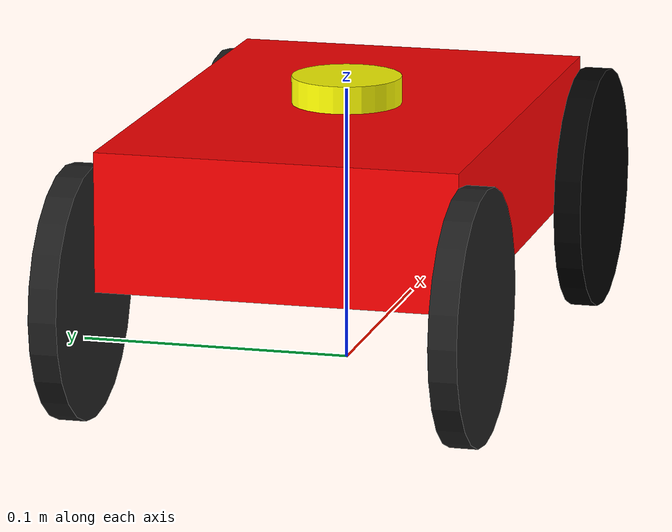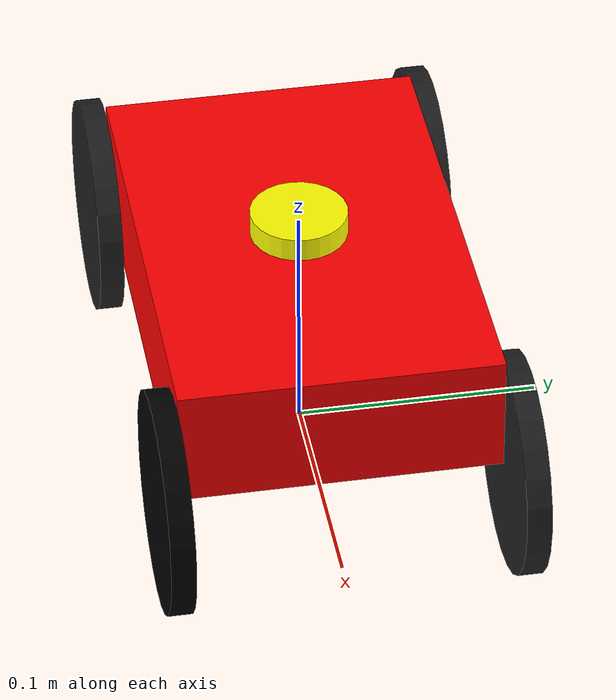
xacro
<?xml version="1.0"?>
<robot xmlns:xacro="http://www.ros.org/wiki/xacro" name="ackbot">

    <xacro:include filename="gazebo.xacro"/>
    <xacro:include filename="imu.xacro"/>

    <!-- BASE LINK -->

    <link name="base_link">

    </link>

    <!-- CHASSIS LINK -->

    <joint name="chassis_joint" type="fixed">
        <parent link="base_link"/>
        <child link="chassis"/>
        <origin xyz="0 0 0.045"/>
    </joint>

    <link name="chassis">
        <xacro:inertial_box mass="3" x="0.2" y="0.13" z="0.06">
            <origin xyz="0 0 0.025" rpy="0 0 0"/>
        </xacro:inertial_box>
        <visual>
            <origin xyz="0 0 0.025" rpy="0 0 0" />
            <geometry>
                <box size="0.2 0.13 0.05"/>
            </geometry>
            <material name="Red">
                <color rgba="1 0 0 1"/>
            </material>
        </visual>
        <collision>
            <origin xyz="0 0 0.025" rpy="0 0 0" />
            <geometry>
                <box size="0.2 0.13 0.06"/>
            </geometry>
        </collision>
    </link>

    <!-- WHEEL LINK -->

    <link name="right_rear_wheel_link">
        <xacro:inertial_cylinder mass="0.1" length="0.01" radius="0.045">
            <origin xyz="0 0 0" rpy="0 0 0"/>
        </xacro:inertial_cylinder>
        <visual>
            <origin xyz="0 0 0" rpy="0 0 0" />
            <geometry>
                <cylinder radius="0.045" length="0.01"/>
                <material name="Black">
                    <color rgba="0 0 0 1"/>
                </material>
            </geometry>
        </visual>
        <collision>
            <origin xyz="0 0 0" rpy="0 0 0" />
            <geometry>
                <cylinder radius="0.045" length="0.01"/>
            </geometry>
        </collision>
    </link>

    <link name="left_rear_wheel_link">
        <xacro:inertial_cylinder mass="0.1" length="0.01" radius="0.045">
            <origin xyz="0 0 0" rpy="0 0 0"/>
        </xacro:inertial_cylinder>
        <visual>
            <origin xyz="0 0 0" rpy="0 0 0" />
            <geometry>
                <cylinder radius="0.045" length="0.01"/>
                <material name="Black">
                    <color rgba="0 0 0 1"/>
                </material>
            </geometry>
        </visual>
        <collision>
            <origin xyz="0 0 0" rpy="0 0 0" />
            <geometry>
                <cylinder radius="0.045" length="0.01"/>
            </geometry>
        </collision>
    </link>

    <link name="right_front_wheel_link">
        <xacro:inertial_cylinder mass="0.1" length="0.01" radius="0.045">
            <origin xyz="0 0 0" rpy="0 0 0"/>
        </xacro:inertial_cylinder>
        <visual>
            <origin xyz="0 0 0" rpy="0 0 0" />
            <geometry>
                <cylinder radius="0.045" length="0.01"/>
            </geometry>
            <material name="Black">
                <color rgba="0 0 0 1"/>
            </material>
        </visual>
        <collision>
            <origin xyz="0 0 0" rpy="0 0 0" />
            <geometry>
                <cylinder radius="0.045" length="0.01"/>
            </geometry>
        </collision>
    </link>

    <link name="left_front_wheel_link">
        <xacro:inertial_cylinder mass="0.1" length="0.01" radius="0.045">
            <origin xyz="0 0 0" rpy="0 0 0"/>
        </xacro:inertial_cylinder>
        <visual>
            <origin xyz="0 0 0" rpy="0 0 0" />
            <geometry>
                <cylinder radius="0.045" length="0.01"/>
                <material name="Black">
                    <color rgba="0 0 0 1"/>
                </material>
            </geometry>
        </visual>
        <collision>
            <origin xyz="0 0 0" rpy="0 0 0" />
            <geometry>
                <cylinder radius="0.045" length="0.01"/>
            </geometry>
        </collision>
    </link>

    <link name="right_steer_link">
        <xacro:inertial_flip_cylinder mass="0.1" length="0.01" radius="0.045">
            <origin xyz="0 0 0" rpy="0 0 0"/>
        </xacro:inertial_flip_cylinder>
    </link>
    <link name="left_steer_link">
        <xacro:inertial_flip_cylinder mass="0.1" length="0.01" radius="0.045">
            <origin xyz="0 0 0" rpy="0 0 0"/>
        </xacro:inertial_flip_cylinder>
    </link>

    <!-- WHEEL JOINT -->

    <joint name="left_rear_wheel" type="continuous">
        <origin xyz="-0.1 0.07 0" rpy="-1.57079632679 0 0" />
        <parent link="chassis" />
        <child link="left_rear_wheel_link" />
        <axis xyz="0 0 1" />
        <limit
            effort="10.0"
            lower="-3.14159265359"
            upper="3.14159265359"
            velocity="20.0"
            />
    </joint>

    <joint name="right_rear_wheel" type="continuous">
        <origin xyz="-0.1 -0.07 0" rpy="-1.57079632679 0 0" />
        <parent link="chassis" />
        <child link="right_rear_wheel_link" />
        <axis xyz="0 0 1" />
        <limit
            effort="10.0"
            lower="-3.14159265359"
            upper="3.14159265359"
            velocity="20.0"
            />
    </joint>

    <joint name="left_steer" type="revolute">
        <origin xyz="0.1 0.07 0" rpy="0 0 0" />
        <parent link="chassis" />
        <child link="left_steer_link" />
        <axis xyz="0 0 1" />
        <limit
            effort="10.00"
            lower="-0.60"
            upper="0.60"
            velocity="10.00"/>
    </joint>

    <joint name="left_front_wheel" type="continuous">
        <origin xyz="0 0 0" rpy="-1.57079632679 0 0" />
        <parent link="left_steer_link" />
        <child link="left_front_wheel_link" />
        <axis xyz="0 0 1" />
        <limit
            effort="10.0"
            lower="-3.14159265359"
            upper="3.14159265359"
            velocity="20.0"
            />
    </joint>

    <joint name="right_steer" type="revolute">
        <origin xyz="0.1 -0.07 0" rpy="0 0 0" />
        <parent link="chassis" />
        <child link="right_steer_link" />
        <axis xyz="0 0 1" />
        <limit
            effort="10.00"
            lower="-0.60"
            upper="0.60"
            velocity="10.00"/>
    </joint>

    <joint name="right_front_wheel" type="continuous">
        <origin xyz="0 0 0" rpy="-1.57079632679 0 0" />
        <parent link="right_steer_link" />
        <child link="right_front_wheel_link" />
        <axis xyz="0 0 1" />
        <limit
            effort="10.0"
            lower="-3.14159265359"
            upper="3.14159265359"
            velocity="20.0"
            />
    </joint>

</robot>

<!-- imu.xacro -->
<robot xmlns:xacro="http://www.ros.org/wiki/xacro" >

    <joint name="imu_joint" type="fixed">
        <parent link="base_link"/>
        <child link="imu_link"/>
        <origin xyz="0.0 0 0.1" rpy="0 0 0"/>
    </joint>

    <link name="imu_link">
        <visual>
            <geometry>
                <cylinder radius="0.02" length="0.01"/>
            </geometry>
            <material name="Yellow">
                <color rgba="1 1 0 1"/>
            </material>
        </visual>
        <collision>
            <geometry>
                <cylinder radius="0.02" length="0.01"/>
            </geometry>
        </collision>
        <xacro:inertial_cylinder mass="0.1" length="0.01" radius="0.02">
            <origin xyz="0 0 0" rpy="0 0 0"/>
        </xacro:inertial_cylinder>
    </link>

    <gazebo reference="imu_link">
        <gravity>true</gravity>
        <material>Gazebo/Yellow</material>
        <sensor name="imu_sensor" type="imu">
            <always_on>true</always_on>
            <update_rate>10</update_rate>
            <visualize>true</visualize>
            <topic>__default_topic__</topic>
            <plugin filename="libgazebo_ros_imu_sensor.so" name="imu_plugin">
                <ros >
                    <remapping>~/out:=imu</remapping>
                </ros>
                <topicName>imu</topicName>
                <bodyName>imu_link</bodyName>
                <updateRateHZ>10.0</updateRateHZ>
                <gaussianNoise>0.005</gaussianNoise>
                <xyzOffset>0 0 0</xyzOffset>
                <rpyOffset>0 0 0</rpyOffset>
                <frame_name>imu_link</frame_name>
                <initialOrientationAsReference>false</initialOrientationAsReference>
            </plugin>
            <pose>0 0 0 0 0 0</pose>
        </sensor>
    </gazebo>
</robot>
